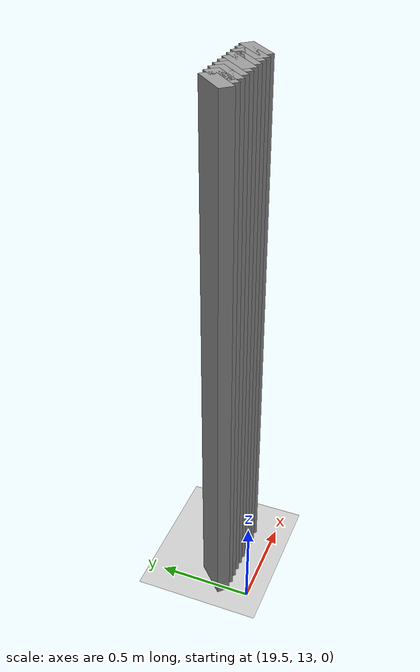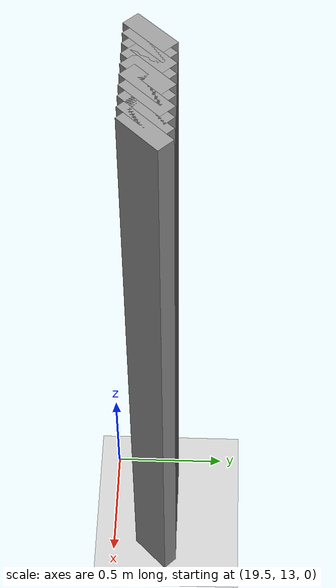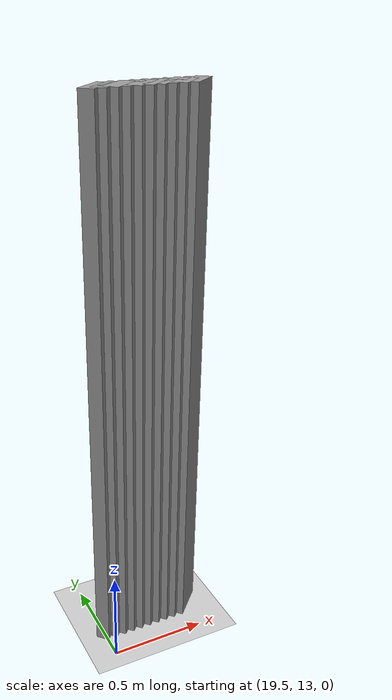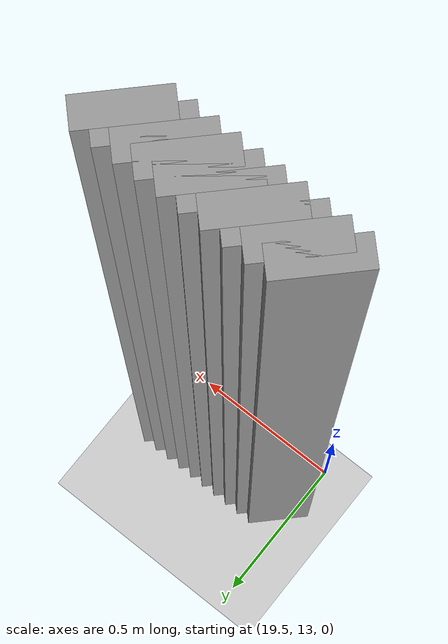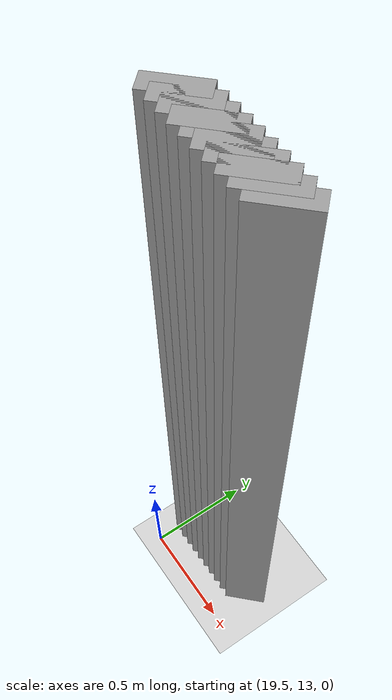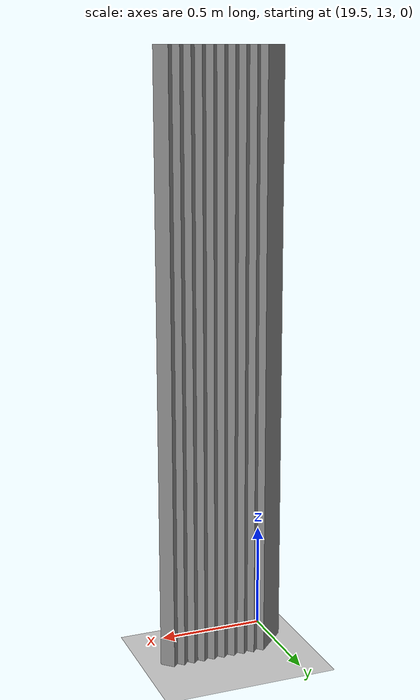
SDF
<sdf version="1.5">
 <world name="default">
  <include><uri>model://ground_plane</uri></include>
  <include><uri>model://sun</uri></include>
  <model name="grey_wall_2049">
   <static>1</static>
   <link name="link">
    <pose>19.55 13.2  1.4 0 0 -0.785398163397</pose>
    <collision name="collision"><geometry><box><size>0.0707106781187 .2  2.8</size></box></geometry></collision>
    <visual name="visual">
     <cast_shadows>0</cast_shadows>
     <geometry><box><size>0.0707106781187 .2  2.8</size></box></geometry>
     <material>
      <script>
       <uri>model://grey_wall/materials/scripts</uri>
       <uri>model://grey_wall/materials/textures</uri>
       <name>vrc/grey_wall</name>
      </script>
     </material>
    </visual>
   </link>
  </model>
  <model name="grey_wall_2050">
   <static>1</static>
   <link name="link">
    <pose>19.6 13.2  1.4 0 0 -0.785398163397</pose>
    <collision name="collision"><geometry><box><size>0.0707106781187 .2  2.8</size></box></geometry></collision>
    <visual name="visual">
     <cast_shadows>0</cast_shadows>
     <geometry><box><size>0.0707106781187 .2  2.8</size></box></geometry>
     <material>
      <script>
       <uri>model://grey_wall/materials/scripts</uri>
       <uri>model://grey_wall/materials/textures</uri>
       <name>vrc/grey_wall</name>
      </script>
     </material>
    </visual>
   </link>
  </model>
  <model name="grey_wall_2051">
   <static>1</static>
   <link name="link">
    <pose>19.65 13.2  1.4 0 0 -0.785398163397</pose>
    <collision name="collision"><geometry><box><size>0.0707106781187 .2  2.8</size></box></geometry></collision>
    <visual name="visual">
     <cast_shadows>0</cast_shadows>
     <geometry><box><size>0.0707106781187 .2  2.8</size></box></geometry>
     <material>
      <script>
       <uri>model://grey_wall/materials/scripts</uri>
       <uri>model://grey_wall/materials/textures</uri>
       <name>vrc/grey_wall</name>
      </script>
     </material>
    </visual>
   </link>
  </model>
  <model name="grey_wall_2052">
   <static>1</static>
   <link name="link">
    <pose>19.7 13.2  1.4 0 0 -0.785398163397</pose>
    <collision name="collision"><geometry><box><size>0.0707106781187 .2  2.8</size></box></geometry></collision>
    <visual name="visual">
     <cast_shadows>0</cast_shadows>
     <geometry><box><size>0.0707106781187 .2  2.8</size></box></geometry>
     <material>
      <script>
       <uri>model://grey_wall/materials/scripts</uri>
       <uri>model://grey_wall/materials/textures</uri>
       <name>vrc/grey_wall</name>
      </script>
     </material>
    </visual>
   </link>
  </model>
  <model name="grey_wall_2053">
   <static>1</static>
   <link name="link">
    <pose>19.75 13.2  1.4 0 0 -0.785398163397</pose>
    <collision name="collision"><geometry><box><size>0.0707106781187 .2  2.8</size></box></geometry></collision>
    <visual name="visual">
     <cast_shadows>0</cast_shadows>
     <geometry><box><size>0.0707106781187 .2  2.8</size></box></geometry>
     <material>
      <script>
       <uri>model://grey_wall/materials/scripts</uri>
       <uri>model://grey_wall/materials/textures</uri>
       <name>vrc/grey_wall</name>
      </script>
     </material>
    </visual>
   </link>
  </model>
  <model name="grey_wall_2054">
   <static>1</static>
   <link name="link">
    <pose>19.8 13.2  1.4 0 0 -0.785398163397</pose>
    <collision name="collision"><geometry><box><size>0.0707106781187 .2  2.8</size></box></geometry></collision>
    <visual name="visual">
     <cast_shadows>0</cast_shadows>
     <geometry><box><size>0.0707106781187 .2  2.8</size></box></geometry>
     <material>
      <script>
       <uri>model://grey_wall/materials/scripts</uri>
       <uri>model://grey_wall/materials/textures</uri>
       <name>vrc/grey_wall</name>
      </script>
     </material>
    </visual>
   </link>
  </model>
  <model name="grey_wall_2055">
   <static>1</static>
   <link name="link">
    <pose>19.85 13.2  1.4 0 0 -0.785398163397</pose>
    <collision name="collision"><geometry><box><size>0.0707106781187 .2  2.8</size></box></geometry></collision>
    <visual name="visual">
     <cast_shadows>0</cast_shadows>
     <geometry><box><size>0.0707106781187 .2  2.8</size></box></geometry>
     <material>
      <script>
       <uri>model://grey_wall/materials/scripts</uri>
       <uri>model://grey_wall/materials/textures</uri>
       <name>vrc/grey_wall</name>
      </script>
     </material>
    </visual>
   </link>
  </model>
  <model name="grey_wall_2056">
   <static>1</static>
   <link name="link">
    <pose>19.9 13.2  1.4 0 0 -0.785398163397</pose>
    <collision name="collision"><geometry><box><size>0.0707106781187 .2  2.8</size></box></geometry></collision>
    <visual name="visual">
     <cast_shadows>0</cast_shadows>
     <geometry><box><size>0.0707106781187 .2  2.8</size></box></geometry>
     <material>
      <script>
       <uri>model://grey_wall/materials/scripts</uri>
       <uri>model://grey_wall/materials/textures</uri>
       <name>vrc/grey_wall</name>
      </script>
     </material>
    </visual>
   </link>
  </model>
  <model name="grey_wall_2057">
   <static>1</static>
   <link name="link">
    <pose>19.95 13.2  1.4 0 0 -0.785398163397</pose>
    <collision name="collision"><geometry><box><size>0.0707106781187 .2  2.8</size></box></geometry></collision>
    <visual name="visual">
     <cast_shadows>0</cast_shadows>
     <geometry><box><size>0.0707106781187 .2  2.8</size></box></geometry>
     <material>
      <script>
       <uri>model://grey_wall/materials/scripts</uri>
       <uri>model://grey_wall/materials/textures</uri>
       <name>vrc/grey_wall</name>
      </script>
     </material>
    </visual>
   </link>
  </model>
  <model name="grey_wall_2058">
   <static>1</static>
   <link name="link">
    <pose>20.0 13.2  1.4 0 0 -0.785398163397</pose>
    <collision name="collision"><geometry><box><size>0.0707106781187 .2  2.8</size></box></geometry></collision>
    <visual name="visual">
     <cast_shadows>0</cast_shadows>
     <geometry><box><size>0.0707106781187 .2  2.8</size></box></geometry>
     <material>
      <script>
       <uri>model://grey_wall/materials/scripts</uri>
       <uri>model://grey_wall/materials/textures</uri>
       <name>vrc/grey_wall</name>
      </script>
     </material>
    </visual>
   </link>
  </model>
 </world>
</sdf>
